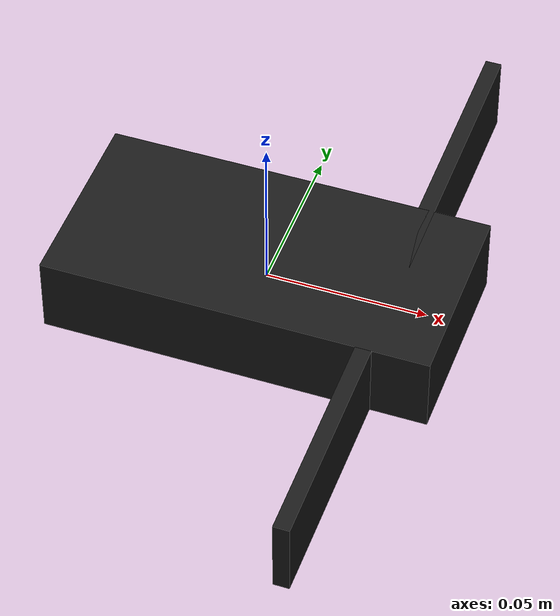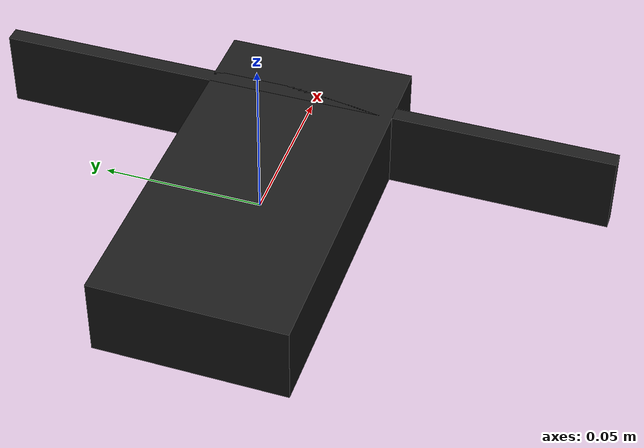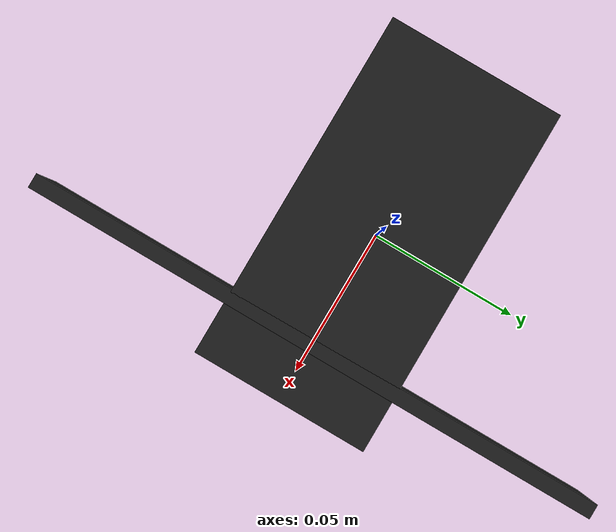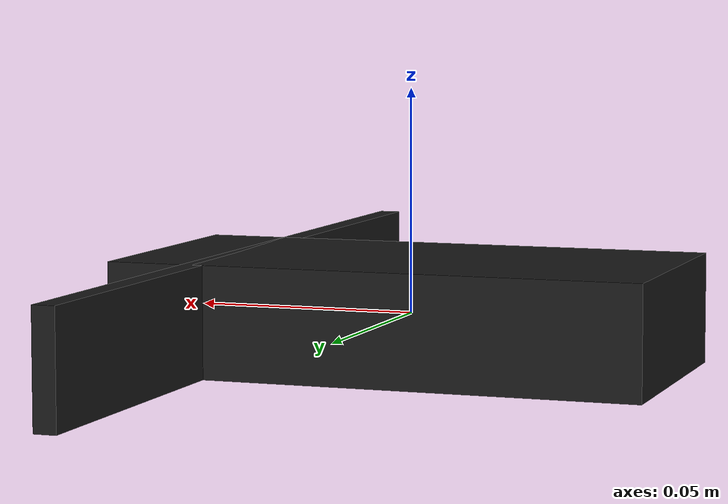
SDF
<?xml version='1.0'?>
<sdf version='1.9'>
  <model name="slamdunk">
    <link name="slamdunk_link">
      <visual name="visual">
        <geometry>
          <box>
            <size>0.12 0.06 0.025</size>
          </box>
        </geometry>
        <material>
          <diffuse>0.1 0.1 0.1 1</diffuse>
          <ambient>0.1 0.1 0.1 1</ambient>
        </material>
      </visual>
      <visual name="visual2">
        <pose>0.04 0 0 0 0 0</pose>
        <geometry>
          <box>
            <size>0.005 0.2 0.025</size>
          </box>
        </geometry>
        <material>
          <diffuse>0.1 0.1 0.1 1</diffuse>
          <ambient>0.1 0.1 0.1 1</ambient>
        </material>
      </visual>
      <inertial>
        <mass>0.135</mass>
        <inertia>
          <ixx> 0.00010 </ixx>
          <iyy> 0.00020 </iyy>
          <izz> 0.00020 </izz>
        </inertia>
      </inertial>
      <collision name="slamdunk_collision">
        <geometry>
          <box>
            <size>0.12 0.06 0.025</size>
          </box>
        </geometry>
      </collision>
      <sensor type="camera" name="left_rgb_rect">
        <pose>0.05 0.1 0 0 0 0</pose>
        <update_rate>30.0</update_rate>
        <camera name="left_rgb_rect_cam">
          <horizontal_fov>1.19</horizontal_fov>
          <image>
            <width>576</width>
            <height>576</height>
            <format>R8G8B8</format>
          </image>
          <clip>
            <near>0.02</near>
            <far>1000</far>
          </clip>
        </camera>
        <plugin name="left_cam_controller" filename="libgazebo_ros_camera.so">
          <alwaysOn>true</alwaysOn>
          <updateRate>30.0</updateRate>
          <cameraName>left_rgb_rect</cameraName>
          <imageTopicName>image_rect_color</imageTopicName>
          <cameraInfoTopicName>camera_info</cameraInfoTopicName>
          <frameName>cam_optical_frame2</frameName>
        </plugin>
      </sensor>
      <sensor type="camera" name="right_rgb_rect">
        <pose>0.05 -0.1 0 0 0 0</pose>
        <update_rate>30.0</update_rate>
        <camera name="right_rgb_rect_cam">
          <horizontal_fov>1.19</horizontal_fov>
          <image>
            <width>576</width>
            <height>576</height>
            <format>R8G8B8</format>
          </image>
          <clip>
            <near>0.02</near>
            <far>1000</far>
          </clip>
        </camera>
        <plugin name="right_cam_controller" filename="libgazebo_ros_camera.so">
          <alwaysOn>true</alwaysOn>
          <updateRate>30.0</updateRate>
          <cameraName>right_rgb_rect</cameraName>
          <imageTopicName>image_rect_color</imageTopicName>
          <cameraInfoTopicName>camera_info</cameraInfoTopicName>
          <frameName>cam_optical_frame3</frameName>
        </plugin>
      </sensor>
      <sensor type="imu" name="imu_sensor">
        <update_rate>200</update_rate>
        <imu>
        </imu>
        <plugin name="imu_controller" filename="libgazebo_ros_imu_sensor.so">
          <alwaysOn>true</alwaysOn>
          <updateRateHZ>0.0</updateRateHZ>
          <robotNamespace></robotNamespace>
          <topicName>imu</topicName>
          <bodyName>slamdunk_link</bodyName>
          <frameName>slamdunk_link</frameName>
        </plugin>
      </sensor>
    </link>
  </model>
</sdf>
